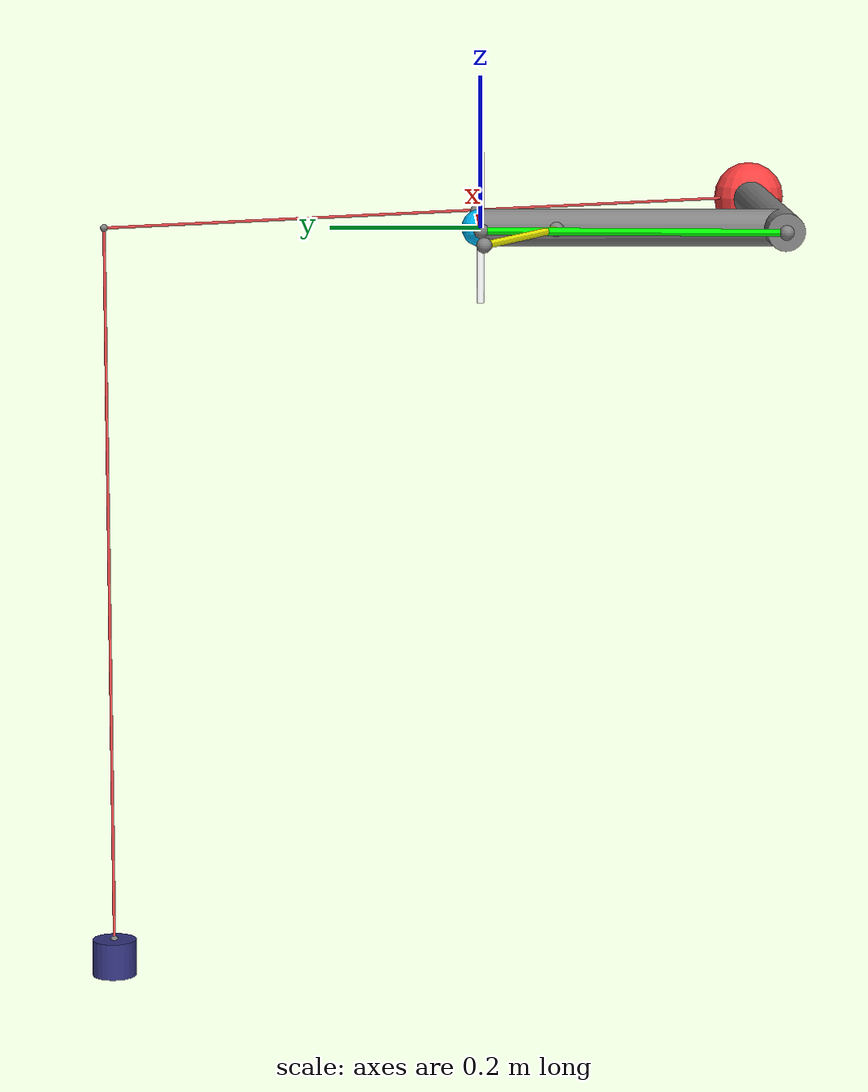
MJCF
<mujoco model="two-joint-limb">
  <option timestep="0.002" />

  <visual>
    <map force="0.1" zfar="30" />
    <rgba haze="0.15 0.25 0.35 1" />
    <global offwidth="2560" offheight="1440" elevation="-45" azimuth="120" />
  </visual>

  <asset>
    <texture type="skybox" builtin="gradient" rgb1=".3 .5 .7" rgb2="0 0 0" width="32" height="512" />
    <texture name="grid" type="2d" builtin="checker" width="512" height="512" rgb1=".1 .2 .3"
      rgb2=".2 .3 .4" />
    <material name="grid" texture="grid" texrepeat="10 10" texuniform="true" reflectance=".2" />
  </asset>

  <default>
    <joint damping="0.1" />
    <muscle ctrllimited="true" ctrlrange="0 1" />
  </default>

  <worldbody>

    <!-- LIGHTS -->
    <light name="spotlight" mode="targetbodycom" target="hand" diffuse=".5 .5 .5"
      specular="0.3 0.3 0.3" pos="0 -6 4" cutoff="30" />
    <light name="top" pos="0 0 2" mode="trackcom" />

    <!-- FLOOR-->
    <geom name="floor" type="plane" pos="0 0 -2" size="0 0 .01" material="grid" condim="3" />

    <!-- weight -->
    <body name="weight" pos="0 0.5 -1">
      <joint axis="0 0 1" pos="0 0 .025" type="slide" />
      <geom name="weight" type="cylinder" size=".03 .025" mass="1" rgba=".2 .2 .5 1" />
      <site name="s1" pos="0 0 .025" />
    </body>

    <!-- pulley site -->
    <site name="pulley" pos="0 0.5 0" />

    <!-- TRUNK -->
    <body name="trunk" pos="0 0 0">

      <!-- tendon attachment sites -->
      <site name="deltoid1" pos=".25 0 0" size="0.01" />
      <site name="latissimus1" pos="-0.25 0 0" size="0.01" />

      <!-- UPPER ARM -->
      <body name="upper_arm" pos="0 0 0">

        <!-- shoulder -->
        <joint name="shoulder" type="hinge" axis="0 0 1" range="-1e-3 1e-3" />

        <!-- tendon attachment sites -->
        <site name="deltoid2" pos="0.025 -.1 0" size="0.01" />
        <site name="latissimus2" pos="-0.025 -.1 0" size="0.01" />
        <site name="biceps1" pos="0.05 0 0" size="0.01" />
        <site name="triceps1" pos="-0.05 0 0" size="0.01" />

        <!-- humerus -->
        <geom name="humerus" type="cylinder" size="0.025" fromto="0 0 0 0 -.4 0" />

        <!-- LOWER ARM -->
        <body name="lower_arm" pos="0 -0.4 0">

          <!-- elbow -->
          <joint name="elbow" type="hinge" axis="0 0 1" range="-60 60" />
          <site name="elbow_site" pos="0 0 0" size="0.01" />

          <!-- tendon attachment sites -->
          <site name="biceps2" pos=".1 .03 0" size="0.01" />
          <site name="triceps2" pos="-.08 0 0" size="0.01" />

          <!-- radius -->
          <geom name="radius" type="cylinder" size="0.025" fromto="-.075 0 0 .5 0 0" />

          <!-- HAND -->
          <body name="hand" pos="0.5 0 0">
            <geom name="hand" type="sphere" size="0.05" pos="0 0 0" rgba="1 .25 .25 1" />
            <site name="nail2" pos="0 0 0" />
            <site name="s3" pos="0 0 0" />
          </body>
        </body>
      </body>
    </body>

    <!-- TARGET -->
    <body name="target" mocap="true" pos="0 0 0">
      <geom name="target" size=".025" type="sphere" contype="0" conaffinity="0"
        rgba="0 .75 1 1" />
    </body>

    <!-- NAIL -->
    <body name="nail" mocap="true" pos="0 0 0">
      <geom name="nail" type="cylinder" size=".005" fromto="0 0 -.1 0 0 .1" contype="0"
        conaffinity="0" rgba="1 1 1 1" />
      <site name="nail1" pos="0 0 0" />
    </body>
  </worldbody>

  <equality>
    <connect name="nail_eq" active="false" site1="nail1" site2="nail2" />
  </equality>

  <tendon>
    <spatial name="deltoid_tendon" limited="true" range="0 1" width="0.005" rgba="1 0 1 1">
      <site site="deltoid1" />
      <site site="deltoid2" />
    </spatial>

    <spatial name="latissimus_tendon" limited="true" range="0 1" width="0.005" rgba="1 1 0 1">
      <site site="latissimus1" />
      <site site="latissimus2" />
    </spatial>

    <spatial name="biceps_tendon" limited="true" range="0 .485" width="0.005" rgba="1 0 0 1">
      <site site="biceps1" />
      <geom geom="humerus" />
      <site site="biceps2" />
    </spatial>

    <spatial name="triceps_tendon" limited="true" range="0 .5" width="0.005" rgba="0 1 0 1">
      <site site="triceps1" />
      <geom geom="radius" />
      <site site="triceps2" />
    </spatial>

    <!-- Tendon with Pulleys -->
    <spatial range="0 2" limited="true" width=".002" rgba=".95 .3 .3 1">
      <site site="s1" />
      <site site="pulley" />
      <geom geom="hand" />
      <site site="s3" />
    </spatial>

  </tendon>

  <actuator>
    <muscle name="deltoid" tendon="deltoid_tendon" ctrlrange="0 1" force="100" timeconst=".01 .04" />
    <muscle name="latissimus" tendon="latissimus_tendon" ctrlrange="0 1" force="100"
      timeconst=".01 .04" />
    <muscle name="biceps" tendon="biceps_tendon" ctrlrange="0 1" force="100" timeconst=".01 .04" />
    <muscle name="triceps" tendon="triceps_tendon" ctrlrange="0 1" force="100" timeconst=".01 .04" />
  </actuator>

  <sensor>
    <actuatorpos name="deltoid_length" actuator="deltoid" />
    <actuatorpos name="latissimus_length" actuator="latissimus" />
    <actuatorpos name="biceps_length" actuator="biceps" />
    <actuatorpos name="triceps_length" actuator="triceps" />
    <actuatorvel name="deltoid_velocity" actuator="deltoid" />
    <actuatorvel name="latissimus_velocity" actuator="latissimus" />
    <actuatorvel name="biceps_velocity" actuator="biceps" />
    <actuatorvel name="triceps_velocity" actuator="triceps" />
    <actuatorfrc name="deltoid_force" actuator="deltoid" />
    <actuatorfrc name="latissimus_force" actuator="latissimus" />
    <actuatorfrc name="biceps_force" actuator="biceps" />
    <actuatorfrc name="triceps_force" actuator="triceps" />

    <torque name="elbow_torque" site="elbow_site" />

  </sensor>

</mujoco>
